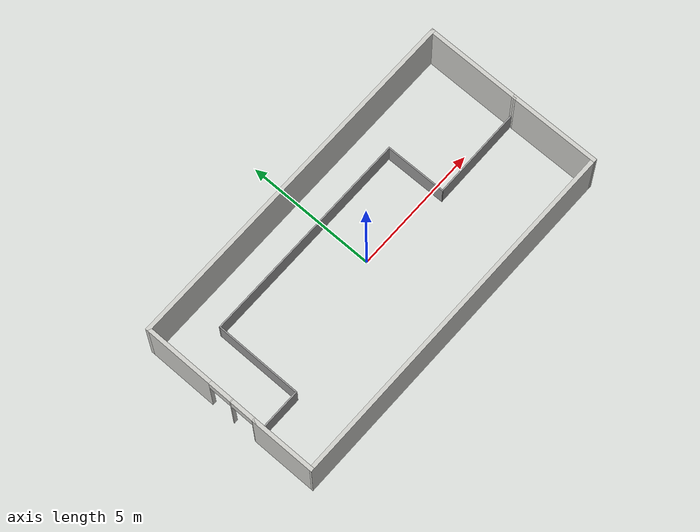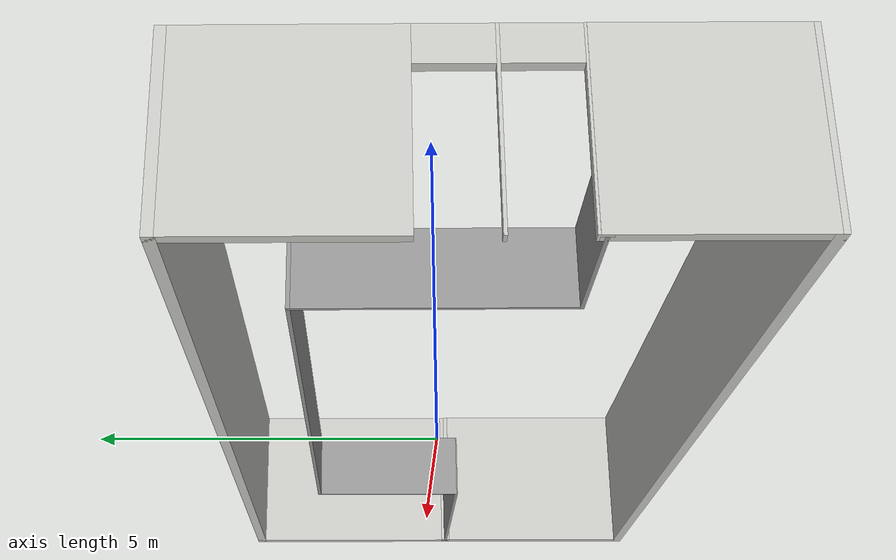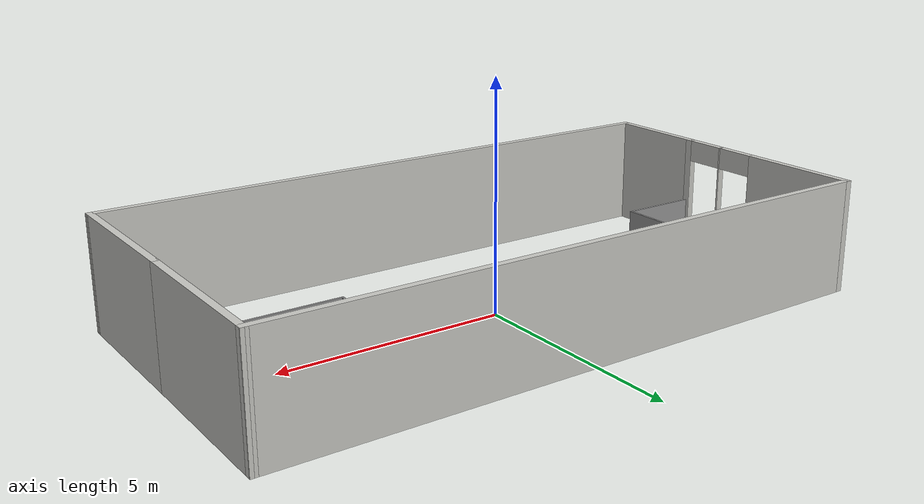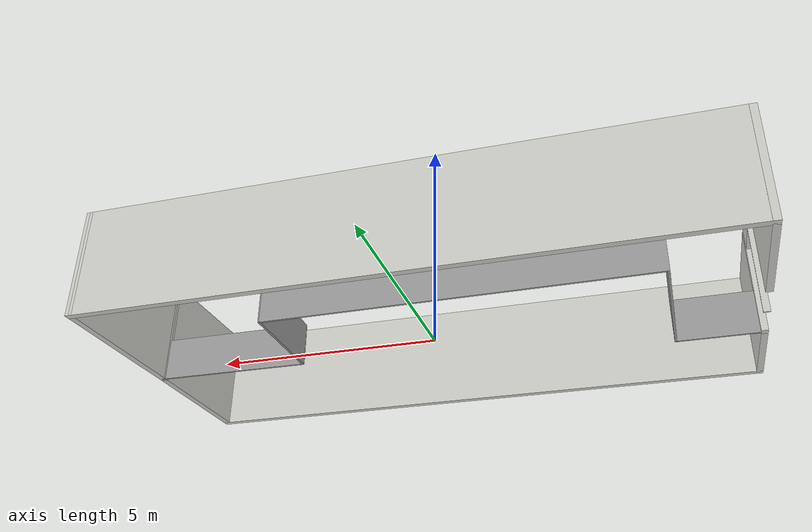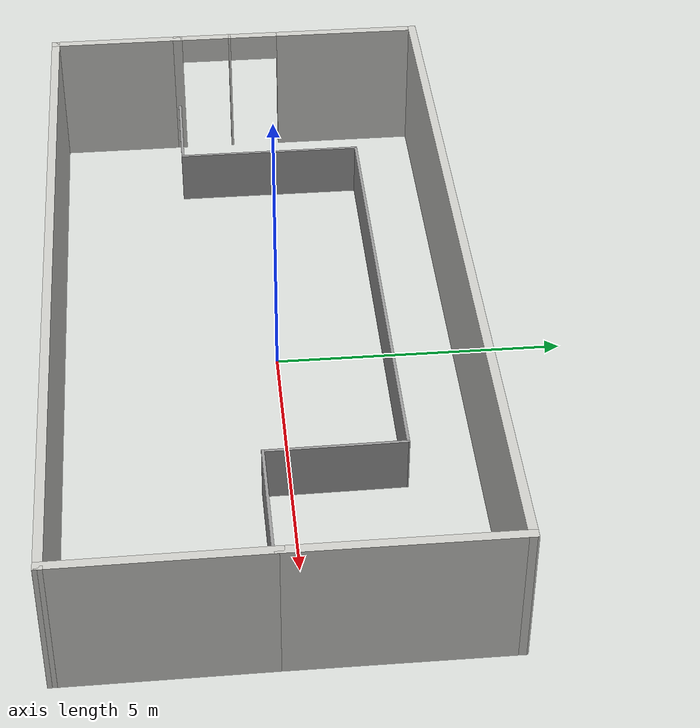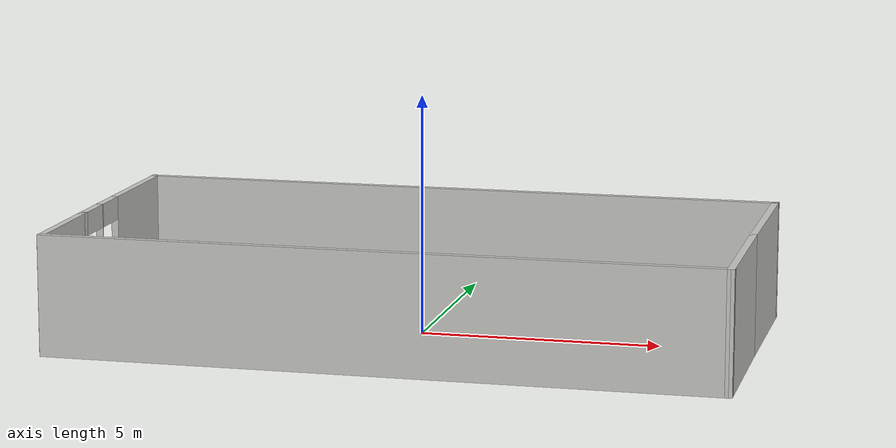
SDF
<?xml version='1.0'?>
<sdf version='1.7'>
  <model name='mfi_floor_trial1'>
    <pose>0.011095 -0.309692 0 0 -0 0</pose>
    <link name='Wall_10'>
      <collision name='Wall_10_Collision'>
        <geometry>
          <box>
            <size>1.9 0.05 1</size>
          </box>
        </geometry>
        <pose>0 0 0.5 0 -0 0</pose>
      </collision>
      <visual name='Wall_10_Visual'>
        <pose>0 0 0.5 0 -0 0</pose>
        <geometry>
          <box>
            <size>1.9 0.05 1</size>
          </box>
        </geometry>
        <material>
          <script>
            <uri>file://media/materials/scripts/gazebo.material</uri>
            <name>Gazebo/Grey</name>
          </script>
          <ambient>1 1 1 1</ambient>
        </material>
        <meta>
          <layer>0</layer>
        </meta>
      </visual>
      <pose>-6.0041 -1.14431 0 0 -0 3.14159</pose>
    </link>
    <link name='Wall_14'>
      <collision name='Wall_14_Collision'>
        <geometry>
          <box>
            <size>2.48851 0.15 2.5</size>
          </box>
        </geometry>
        <pose>0 0 1.25 0 -0 0</pose>
      </collision>
      <visual name='Wall_14_Visual'>
        <pose>0 0 1.25 0 -0 0</pose>
        <geometry>
          <box>
            <size>2.48851 0.15 2.5</size>
          </box>
        </geometry>
        <material>
          <script>
            <uri>file://media/materials/scripts/gazebo.material</uri>
            <name>Gazebo/CeilingTiled</name>
          </script>
          <ambient>0.729412 0.741176 0.713726 1</ambient>
        </material>
        <meta>
          <layer>0</layer>
        </meta>
      </visual>
      <pose>-6.92509 -2.31381 0 0 -0 -1.56738</pose>
    </link>
    <link name='Wall_16'>
      <pose>-6.92809 1.16719 0 0 -0 1.5708</pose>
      <visual name='Wall_16_Visual_0'>
        <pose>-2.29327 0 1.25 0 -0 0</pose>
        <geometry>
          <box>
            <size>0.1769 0.15 2.5</size>
          </box>
        </geometry>
        <material>
          <script>
            <uri>file://media/materials/scripts/gazebo.material</uri>
            <name>Gazebo/CeilingTiled</name>
          </script>
          <ambient>0.729412 0.741176 0.713726 1</ambient>
        </material>
        <meta>
          <layer>0</layer>
        </meta>
      </visual>
      <collision name='Wall_16_Collision_0'>
        <geometry>
          <box>
            <size>0.1769 0.15 2.5</size>
          </box>
        </geometry>
        <pose>-2.29327 0 1.25 0 -0 0</pose>
      </collision>
      <visual name='Wall_16_Visual_1'>
        <pose>-1.28401 0 1.25 0 -0 0</pose>
        <geometry>
          <box>
            <size>0.041629 0.15 2.5</size>
          </box>
        </geometry>
        <material>
          <script>
            <uri>file://media/materials/scripts/gazebo.material</uri>
            <name>Gazebo/CeilingTiled</name>
          </script>
          <ambient>0.729412 0.741176 0.713726 1</ambient>
        </material>
        <meta>
          <layer>0</layer>
        </meta>
      </visual>
      <collision name='Wall_16_Collision_1'>
        <geometry>
          <box>
            <size>0.041629 0.15 2.5</size>
          </box>
        </geometry>
        <pose>-1.28401 0 1.25 0 -0 0</pose>
      </collision>
      <visual name='Wall_16_Visual_2'>
        <pose>1.00926 0 1.25 0 -0 0</pose>
        <geometry>
          <box>
            <size>2.74491 0.15 2.5</size>
          </box>
        </geometry>
        <material>
          <script>
            <uri>file://media/materials/scripts/gazebo.material</uri>
            <name>Gazebo/CeilingTiled</name>
          </script>
          <ambient>0.729412 0.741176 0.713726 1</ambient>
        </material>
        <meta>
          <layer>0</layer>
        </meta>
      </visual>
      <collision name='Wall_16_Collision_2'>
        <geometry>
          <box>
            <size>2.74491 0.15 2.5</size>
          </box>
        </geometry>
        <pose>1.00926 0 1.25 0 -0 0</pose>
      </collision>
      <visual name='Wall_16_Visual_3'>
        <pose>-1.75482 0 2.25 0 -0 0</pose>
        <geometry>
          <box>
            <size>0.9 0.15 0.5</size>
          </box>
        </geometry>
        <material>
          <script>
            <uri>file://media/materials/scripts/gazebo.material</uri>
            <name>Gazebo/CeilingTiled</name>
          </script>
          <ambient>0.729412 0.741176 0.713726 1</ambient>
        </material>
        <meta>
          <layer>0</layer>
        </meta>
      </visual>
      <collision name='Wall_16_Collision_3'>
        <geometry>
          <box>
            <size>0.9 0.15 0.5</size>
          </box>
        </geometry>
        <pose>-1.75482 0 2.25 0 -0 0</pose>
      </collision>
      <visual name='Wall_16_Visual_4'>
        <pose>-0.813192 0 2.25 0 -0 0</pose>
        <geometry>
          <box>
            <size>0.9 0.15 0.5</size>
          </box>
        </geometry>
        <material>
          <script>
            <uri>file://media/materials/scripts/gazebo.material</uri>
            <name>Gazebo/CeilingTiled</name>
          </script>
          <ambient>0.729412 0.741176 0.713726 1</ambient>
        </material>
        <meta>
          <layer>0</layer>
        </meta>
      </visual>
      <collision name='Wall_16_Collision_4'>
        <geometry>
          <box>
            <size>0.9 0.15 0.5</size>
          </box>
        </geometry>
        <pose>-0.813192 0 2.25 0 -0 0</pose>
      </collision>
    </link>
    <link name='Wall_20'>
      <collision name='Wall_20_Collision'>
        <geometry>
          <box>
            <size>13.9871 0.15 2.5</size>
          </box>
        </geometry>
        <pose>0 0 1.25 0 -0 0</pose>
      </collision>
      <visual name='Wall_20_Visual'>
        <pose>0 0 1.25 0 -0 0</pose>
        <geometry>
          <box>
            <size>13.9871 0.15 2.5</size>
          </box>
        </geometry>
        <material>
          <script>
            <uri>file://media/materials/scripts/gazebo.material</uri>
            <name>Gazebo/CeilingTiled</name>
          </script>
          <ambient>0.729412 0.741176 0.713726 1</ambient>
        </material>
        <meta>
          <layer>0</layer>
        </meta>
      </visual>
      <pose>-0.009595 3.47869 0 0 -0 0.000723</pose>
    </link>
    <link name='Wall_21'>
      <collision name='Wall_21_Collision'>
        <geometry>
          <box>
            <size>3.75 0.15 2.5</size>
          </box>
        </geometry>
        <pose>0 0 1.25 0 -0 0</pose>
      </collision>
      <visual name='Wall_21_Visual'>
        <pose>0 0 1.25 0 -0 0</pose>
        <geometry>
          <box>
            <size>3.75 0.15 2.5</size>
          </box>
        </geometry>
        <material>
          <script>
            <uri>file://media/materials/scripts/gazebo.material</uri>
            <name>Gazebo/CeilingTiled</name>
          </script>
          <ambient>0.729412 0.741176 0.713726 1</ambient>
        </material>
        <meta>
          <layer>0</layer>
        </meta>
      </visual>
      <pose>6.90891 1.68369 0 0 -0 -1.5708</pose>
    </link>
    <link name='Wall_4'>
      <collision name='Wall_4_Collision'>
        <geometry>
          <box>
            <size>14 0.15 2.5</size>
          </box>
        </geometry>
        <pose>0 0 1.25 0 -0 0</pose>
      </collision>
      <visual name='Wall_4_Visual'>
        <pose>0 0 1.25 0 -0 0</pose>
        <geometry>
          <box>
            <size>14 0.15 2.5</size>
          </box>
        </geometry>
        <material>
          <script>
            <uri>file://media/materials/scripts/gazebo.material</uri>
            <name>Gazebo/CeilingTiled</name>
          </script>
          <ambient>0.729412 0.741176 0.713726 1</ambient>
        </material>
        <meta>
          <layer>0</layer>
        </meta>
      </visual>
      <pose>0.003905 -3.48331 0 0 -0 0</pose>
    </link>
    <link name='Wall_5'>
      <collision name='Wall_5_Collision'>
        <geometry>
          <box>
            <size>3.51705 0.15 2.5</size>
          </box>
        </geometry>
        <pose>0 0 1.25 0 -0 0</pose>
      </collision>
      <visual name='Wall_5_Visual'>
        <pose>0 0 1.25 0 -0 0</pose>
        <geometry>
          <box>
            <size>3.51705 0.15 2.5</size>
          </box>
        </geometry>
        <material>
          <script>
            <uri>file://media/materials/scripts/gazebo.material</uri>
            <name>Gazebo/CeilingTiled</name>
          </script>
          <ambient>0.729412 0.741176 0.713726 1</ambient>
        </material>
        <meta>
          <layer>0</layer>
        </meta>
      </visual>
      <pose>6.9189 -1.79981 0 0 -0 1.57674</pose>
    </link>
    <link name='Wall_6'>
      <collision name='Wall_6_Collision'>
        <geometry>
          <box>
            <size>3.66511 0.05 1</size>
          </box>
        </geometry>
        <pose>0 0 0.5 0 -0 0</pose>
      </collision>
      <visual name='Wall_6_Visual'>
        <pose>0 0 0.5 0 -0 0</pose>
        <geometry>
          <box>
            <size>3.66511 0.05 1</size>
          </box>
        </geometry>
        <material>
          <script>
            <uri>file://media/materials/scripts/gazebo.material</uri>
            <name>Gazebo/Grey</name>
          </script>
          <ambient>1 1 1 1</ambient>
        </material>
        <meta>
          <layer>0</layer>
        </meta>
      </visual>
      <pose>5.10141 -0.130308 0 0 -0 -3.13385</pose>
    </link>
    <link name='Wall_7'>
      <collision name='Wall_7_Collision'>
        <geometry>
          <box>
            <size>2.38811 0.05 1</size>
          </box>
        </geometry>
        <pose>0 0 0.5 0 -0 0</pose>
      </collision>
      <visual name='Wall_7_Visual'>
        <pose>0 0 0.5 0 -0 0</pose>
        <geometry>
          <box>
            <size>2.38811 0.05 1</size>
          </box>
        </geometry>
        <material>
          <script>
            <uri>file://media/materials/scripts/gazebo.material</uri>
            <name>Gazebo/Grey</name>
          </script>
          <ambient>1 1 1 1</ambient>
        </material>
        <meta>
          <layer>0</layer>
        </meta>
      </visual>
      <pose>3.2824 1.02469 0 0 -0 1.58063</pose>
    </link>
    <link name='Wall_8'>
      <collision name='Wall_8_Collision'>
        <geometry>
          <box>
            <size>8.4 0.05 1</size>
          </box>
        </geometry>
        <pose>0 0 0.5 0 -0 0</pose>
      </collision>
      <visual name='Wall_8_Visual'>
        <pose>0 0 0.5 0 -0 0</pose>
        <geometry>
          <box>
            <size>8.4 0.05 1</size>
          </box>
        </geometry>
        <material>
          <script>
            <uri>file://media/materials/scripts/gazebo.material</uri>
            <name>Gazebo/Grey</name>
          </script>
          <ambient>1 1 1 1</ambient>
        </material>
        <meta>
          <layer>0</layer>
        </meta>
      </visual>
      <pose>-0.904095 2.19369 0 0 -0 3.14159</pose>
    </link>
    <link name='Wall_9'>
      <collision name='Wall_9_Collision'>
        <geometry>
          <box>
            <size>3.388 0.05 1</size>
          </box>
        </geometry>
        <pose>0 0 0.5 0 -0 0</pose>
      </collision>
      <visual name='Wall_9_Visual'>
        <pose>0 0 0.5 0 -0 0</pose>
        <geometry>
          <box>
            <size>3.388 0.05 1</size>
          </box>
        </geometry>
        <material>
          <script>
            <uri>file://media/materials/scripts/gazebo.material</uri>
            <name>Gazebo/Grey</name>
          </script>
          <ambient>1 1 1 1</ambient>
        </material>
        <meta>
          <layer>0</layer>
        </meta>
      </visual>
      <pose>-5.07909 0.524692 0 0 -0 -1.5708</pose>
    </link>
    <static>1</static>
  </model>
</sdf>
